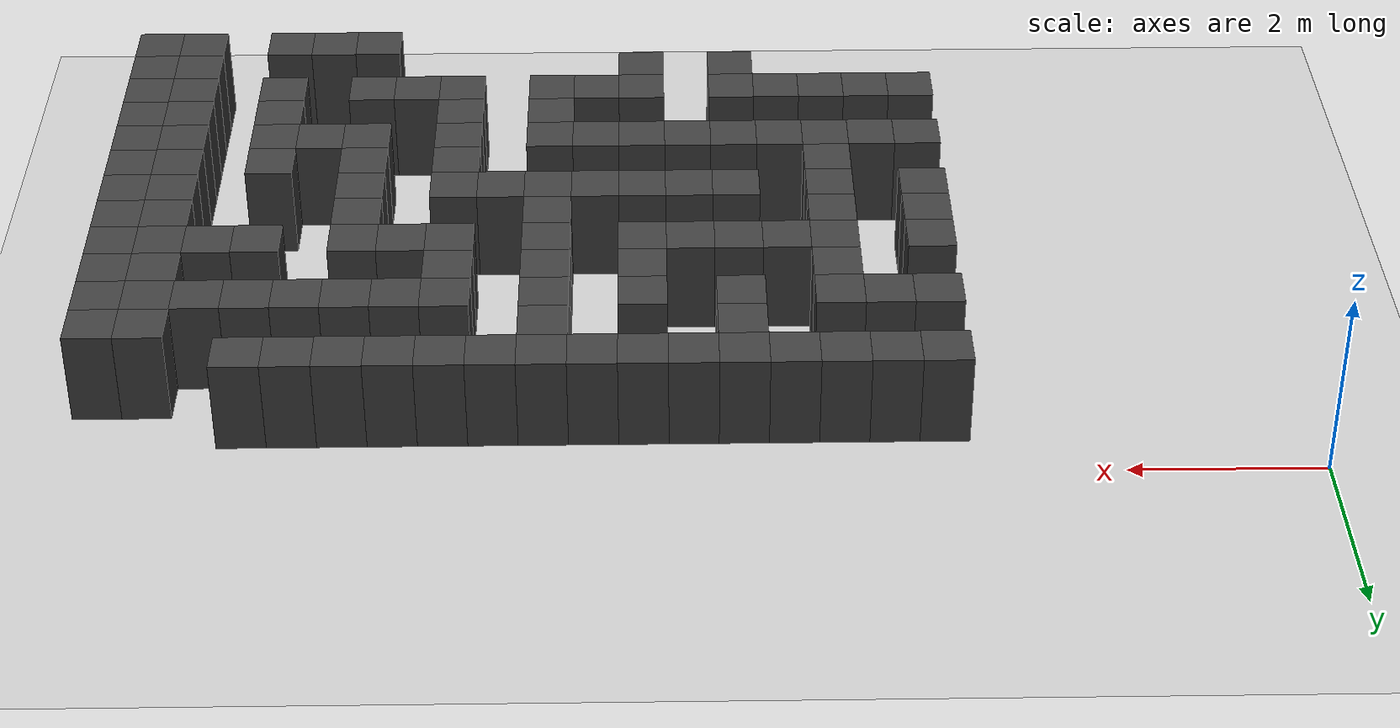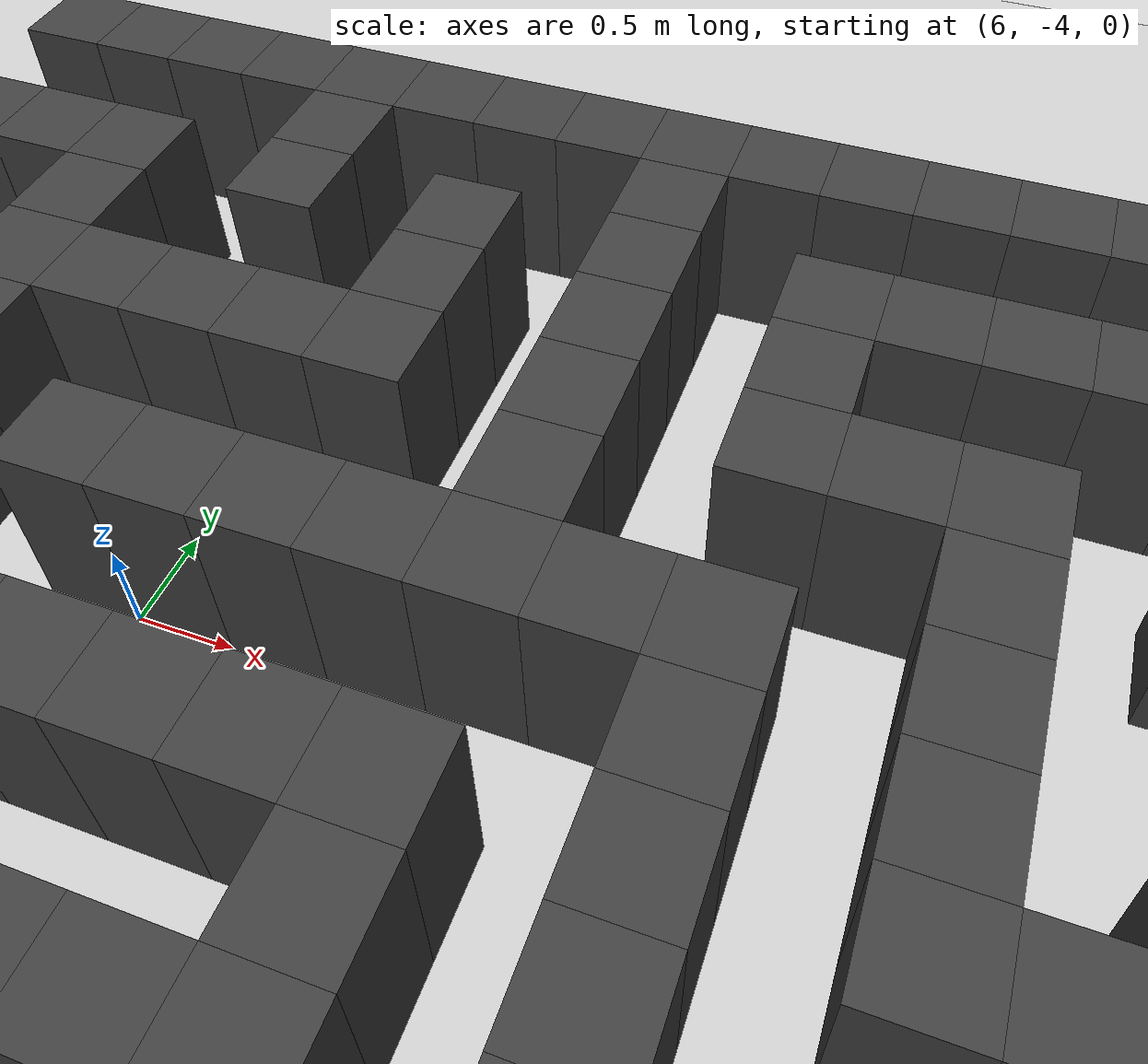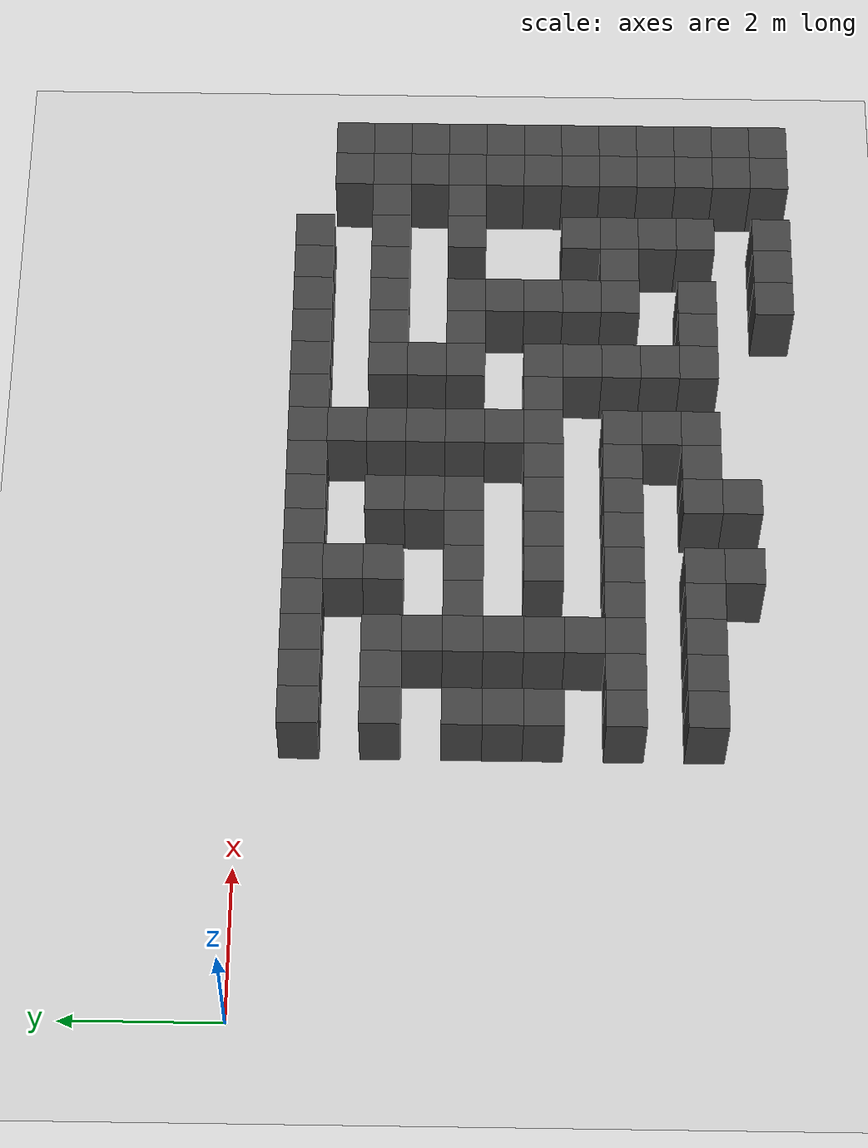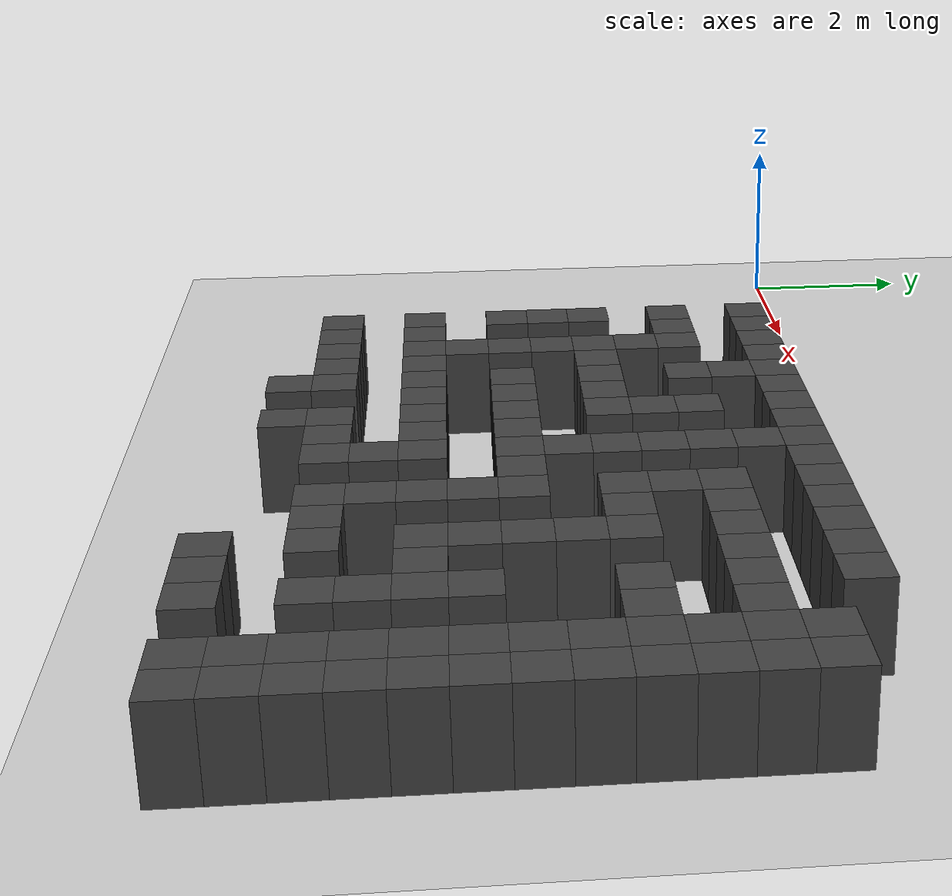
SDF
<sdf version="1.7">
 <world name="map_19217">
  <model name="ground_plane">
   <static>true</static>
   <link name="link">
    <collision name="collision">
     <geometry><plane><normal>0 0 1</normal><size>200 200</size></plane></geometry>
    </collision>
    <visual name="visual">
     <geometry><plane><normal>0 0 1</normal><size>200 200</size></plane></geometry>
     <material><ambient>0.8 0.8 0.8 1</ambient><diffuse>0.8 0.8 0.8 1</diffuse></material>
    </visual>
   </link>
  </model>
  <model name="maze_environment">
   <static>true</static>
   <link name="wall_691">
    <pose>3.750 -0.750 0.500 0 0 0</pose>
    <collision name="col"><geometry><box><size>0.5 0.5 1.0</size></box></geometry></collision>
    <visual name="vis">
     <geometry><box><size>0.5 0.5 1.0</size></box></geometry>
     <material><ambient>0.15 0.15 0.15 1</ambient><diffuse>0.25 0.25 0.25 1</diffuse></material>
    </visual>
   </link>
   <link name="wall_692">
    <pose>4.250 -0.750 0.500 0 0 0</pose>
    <collision name="col"><geometry><box><size>0.5 0.5 1.0</size></box></geometry></collision>
    <visual name="vis">
     <geometry><box><size>0.5 0.5 1.0</size></box></geometry>
     <material><ambient>0.15 0.15 0.15 1</ambient><diffuse>0.25 0.25 0.25 1</diffuse></material>
    </visual>
   </link>
   <link name="wall_693">
    <pose>4.750 -0.750 0.500 0 0 0</pose>
    <collision name="col"><geometry><box><size>0.5 0.5 1.0</size></box></geometry></collision>
    <visual name="vis">
     <geometry><box><size>0.5 0.5 1.0</size></box></geometry>
     <material><ambient>0.15 0.15 0.15 1</ambient><diffuse>0.25 0.25 0.25 1</diffuse></material>
    </visual>
   </link>
   <link name="wall_694">
    <pose>5.250 -0.750 0.500 0 0 0</pose>
    <collision name="col"><geometry><box><size>0.5 0.5 1.0</size></box></geometry></collision>
    <visual name="vis">
     <geometry><box><size>0.5 0.5 1.0</size></box></geometry>
     <material><ambient>0.15 0.15 0.15 1</ambient><diffuse>0.25 0.25 0.25 1</diffuse></material>
    </visual>
   </link>
   <link name="wall_695">
    <pose>5.750 -0.750 0.500 0 0 0</pose>
    <collision name="col"><geometry><box><size>0.5 0.5 1.0</size></box></geometry></collision>
    <visual name="vis">
     <geometry><box><size>0.5 0.5 1.0</size></box></geometry>
     <material><ambient>0.15 0.15 0.15 1</ambient><diffuse>0.25 0.25 0.25 1</diffuse></material>
    </visual>
   </link>
   <link name="wall_696">
    <pose>6.250 -0.750 0.500 0 0 0</pose>
    <collision name="col"><geometry><box><size>0.5 0.5 1.0</size></box></geometry></collision>
    <visual name="vis">
     <geometry><box><size>0.5 0.5 1.0</size></box></geometry>
     <material><ambient>0.15 0.15 0.15 1</ambient><diffuse>0.25 0.25 0.25 1</diffuse></material>
    </visual>
   </link>
   <link name="wall_697">
    <pose>6.750 -0.750 0.500 0 0 0</pose>
    <collision name="col"><geometry><box><size>0.5 0.5 1.0</size></box></geometry></collision>
    <visual name="vis">
     <geometry><box><size>0.5 0.5 1.0</size></box></geometry>
     <material><ambient>0.15 0.15 0.15 1</ambient><diffuse>0.25 0.25 0.25 1</diffuse></material>
    </visual>
   </link>
   <link name="wall_698">
    <pose>7.250 -0.750 0.500 0 0 0</pose>
    <collision name="col"><geometry><box><size>0.5 0.5 1.0</size></box></geometry></collision>
    <visual name="vis">
     <geometry><box><size>0.5 0.5 1.0</size></box></geometry>
     <material><ambient>0.15 0.15 0.15 1</ambient><diffuse>0.25 0.25 0.25 1</diffuse></material>
    </visual>
   </link>
   <link name="wall_699">
    <pose>7.750 -0.750 0.500 0 0 0</pose>
    <collision name="col"><geometry><box><size>0.5 0.5 1.0</size></box></geometry></collision>
    <visual name="vis">
     <geometry><box><size>0.5 0.5 1.0</size></box></geometry>
     <material><ambient>0.15 0.15 0.15 1</ambient><diffuse>0.25 0.25 0.25 1</diffuse></material>
    </visual>
   </link>
   <link name="wall_700">
    <pose>8.250 -0.750 0.500 0 0 0</pose>
    <collision name="col"><geometry><box><size>0.5 0.5 1.0</size></box></geometry></collision>
    <visual name="vis">
     <geometry><box><size>0.5 0.5 1.0</size></box></geometry>
     <material><ambient>0.15 0.15 0.15 1</ambient><diffuse>0.25 0.25 0.25 1</diffuse></material>
    </visual>
   </link>
   <link name="wall_701">
    <pose>8.750 -0.750 0.500 0 0 0</pose>
    <collision name="col"><geometry><box><size>0.5 0.5 1.0</size></box></geometry></collision>
    <visual name="vis">
     <geometry><box><size>0.5 0.5 1.0</size></box></geometry>
     <material><ambient>0.15 0.15 0.15 1</ambient><diffuse>0.25 0.25 0.25 1</diffuse></material>
    </visual>
   </link>
   <link name="wall_702">
    <pose>9.250 -0.750 0.500 0 0 0</pose>
    <collision name="col"><geometry><box><size>0.5 0.5 1.0</size></box></geometry></collision>
    <visual name="vis">
     <geometry><box><size>0.5 0.5 1.0</size></box></geometry>
     <material><ambient>0.15 0.15 0.15 1</ambient><diffuse>0.25 0.25 0.25 1</diffuse></material>
    </visual>
   </link>
   <link name="wall_703">
    <pose>9.750 -0.750 0.500 0 0 0</pose>
    <collision name="col"><geometry><box><size>0.5 0.5 1.0</size></box></geometry></collision>
    <visual name="vis">
     <geometry><box><size>0.5 0.5 1.0</size></box></geometry>
     <material><ambient>0.15 0.15 0.15 1</ambient><diffuse>0.25 0.25 0.25 1</diffuse></material>
    </visual>
   </link>
   <link name="wall_704">
    <pose>10.250 -0.750 0.500 0 0 0</pose>
    <collision name="col"><geometry><box><size>0.5 0.5 1.0</size></box></geometry></collision>
    <visual name="vis">
     <geometry><box><size>0.5 0.5 1.0</size></box></geometry>
     <material><ambient>0.15 0.15 0.15 1</ambient><diffuse>0.25 0.25 0.25 1</diffuse></material>
    </visual>
   </link>
   <link name="wall_705">
    <pose>10.750 -0.750 0.500 0 0 0</pose>
    <collision name="col"><geometry><box><size>0.5 0.5 1.0</size></box></geometry></collision>
    <visual name="vis">
     <geometry><box><size>0.5 0.5 1.0</size></box></geometry>
     <material><ambient>0.15 0.15 0.15 1</ambient><diffuse>0.25 0.25 0.25 1</diffuse></material>
    </visual>
   </link>
   <link name="wall_714">
    <pose>5.750 -1.250 0.500 0 0 0</pose>
    <collision name="col"><geometry><box><size>0.5 0.5 1.0</size></box></geometry></collision>
    <visual name="vis">
     <geometry><box><size>0.5 0.5 1.0</size></box></geometry>
     <material><ambient>0.15 0.15 0.15 1</ambient><diffuse>0.25 0.25 0.25 1</diffuse></material>
    </visual>
   </link>
   <link name="wall_715">
    <pose>7.750 -1.250 0.500 0 0 0</pose>
    <collision name="col"><geometry><box><size>0.5 0.5 1.0</size></box></geometry></collision>
    <visual name="vis">
     <geometry><box><size>0.5 0.5 1.0</size></box></geometry>
     <material><ambient>0.15 0.15 0.15 1</ambient><diffuse>0.25 0.25 0.25 1</diffuse></material>
    </visual>
   </link>
   <link name="wall_716">
    <pose>11.750 -1.250 0.500 0 0 0</pose>
    <collision name="col"><geometry><box><size>0.5 0.5 1.0</size></box></geometry></collision>
    <visual name="vis">
     <geometry><box><size>0.5 0.5 1.0</size></box></geometry>
     <material><ambient>0.15 0.15 0.15 1</ambient><diffuse>0.25 0.25 0.25 1</diffuse></material>
    </visual>
   </link>
   <link name="wall_717">
    <pose>12.250 -1.250 0.500 0 0 0</pose>
    <collision name="col"><geometry><box><size>0.5 0.5 1.0</size></box></geometry></collision>
    <visual name="vis">
     <geometry><box><size>0.5 0.5 1.0</size></box></geometry>
     <material><ambient>0.15 0.15 0.15 1</ambient><diffuse>0.25 0.25 0.25 1</diffuse></material>
    </visual>
   </link>
   <link name="wall_744">
    <pose>3.750 -1.750 0.500 0 0 0</pose>
    <collision name="col"><geometry><box><size>0.5 0.5 1.0</size></box></geometry></collision>
    <visual name="vis">
     <geometry><box><size>0.5 0.5 1.0</size></box></geometry>
     <material><ambient>0.15 0.15 0.15 1</ambient><diffuse>0.25 0.25 0.25 1</diffuse></material>
    </visual>
   </link>
   <link name="wall_745">
    <pose>4.250 -1.750 0.500 0 0 0</pose>
    <collision name="col"><geometry><box><size>0.5 0.5 1.0</size></box></geometry></collision>
    <visual name="vis">
     <geometry><box><size>0.5 0.5 1.0</size></box></geometry>
     <material><ambient>0.15 0.15 0.15 1</ambient><diffuse>0.25 0.25 0.25 1</diffuse></material>
    </visual>
   </link>
   <link name="wall_746">
    <pose>4.750 -1.750 0.500 0 0 0</pose>
    <collision name="col"><geometry><box><size>0.5 0.5 1.0</size></box></geometry></collision>
    <visual name="vis">
     <geometry><box><size>0.5 0.5 1.0</size></box></geometry>
     <material><ambient>0.15 0.15 0.15 1</ambient><diffuse>0.25 0.25 0.25 1</diffuse></material>
    </visual>
   </link>
   <link name="wall_747">
    <pose>5.750 -1.750 0.500 0 0 0</pose>
    <collision name="col"><geometry><box><size>0.5 0.5 1.0</size></box></geometry></collision>
    <visual name="vis">
     <geometry><box><size>0.5 0.5 1.0</size></box></geometry>
     <material><ambient>0.15 0.15 0.15 1</ambient><diffuse>0.25 0.25 0.25 1</diffuse></material>
    </visual>
   </link>
   <link name="wall_748">
    <pose>6.750 -1.750 0.500 0 0 0</pose>
    <collision name="col"><geometry><box><size>0.5 0.5 1.0</size></box></geometry></collision>
    <visual name="vis">
     <geometry><box><size>0.5 0.5 1.0</size></box></geometry>
     <material><ambient>0.15 0.15 0.15 1</ambient><diffuse>0.25 0.25 0.25 1</diffuse></material>
    </visual>
   </link>
   <link name="wall_749">
    <pose>7.750 -1.750 0.500 0 0 0</pose>
    <collision name="col"><geometry><box><size>0.5 0.5 1.0</size></box></geometry></collision>
    <visual name="vis">
     <geometry><box><size>0.5 0.5 1.0</size></box></geometry>
     <material><ambient>0.15 0.15 0.15 1</ambient><diffuse>0.25 0.25 0.25 1</diffuse></material>
    </visual>
   </link>
   <link name="wall_750">
    <pose>8.750 -1.750 0.500 0 0 0</pose>
    <collision name="col"><geometry><box><size>0.5 0.5 1.0</size></box></geometry></collision>
    <visual name="vis">
     <geometry><box><size>0.5 0.5 1.0</size></box></geometry>
     <material><ambient>0.15 0.15 0.15 1</ambient><diffuse>0.25 0.25 0.25 1</diffuse></material>
    </visual>
   </link>
   <link name="wall_751">
    <pose>9.250 -1.750 0.500 0 0 0</pose>
    <collision name="col"><geometry><box><size>0.5 0.5 1.0</size></box></geometry></collision>
    <visual name="vis">
     <geometry><box><size>0.5 0.5 1.0</size></box></geometry>
     <material><ambient>0.15 0.15 0.15 1</ambient><diffuse>0.25 0.25 0.25 1</diffuse></material>
    </visual>
   </link>
   <link name="wall_752">
    <pose>9.750 -1.750 0.500 0 0 0</pose>
    <collision name="col"><geometry><box><size>0.5 0.5 1.0</size></box></geometry></collision>
    <visual name="vis">
     <geometry><box><size>0.5 0.5 1.0</size></box></geometry>
     <material><ambient>0.15 0.15 0.15 1</ambient><diffuse>0.25 0.25 0.25 1</diffuse></material>
    </visual>
   </link>
   <link name="wall_753">
    <pose>10.250 -1.750 0.500 0 0 0</pose>
    <collision name="col"><geometry><box><size>0.5 0.5 1.0</size></box></geometry></collision>
    <visual name="vis">
     <geometry><box><size>0.5 0.5 1.0</size></box></geometry>
     <material><ambient>0.15 0.15 0.15 1</ambient><diffuse>0.25 0.25 0.25 1</diffuse></material>
    </visual>
   </link>
   <link name="wall_754">
    <pose>10.750 -1.750 0.500 0 0 0</pose>
    <collision name="col"><geometry><box><size>0.5 0.5 1.0</size></box></geometry></collision>
    <visual name="vis">
     <geometry><box><size>0.5 0.5 1.0</size></box></geometry>
     <material><ambient>0.15 0.15 0.15 1</ambient><diffuse>0.25 0.25 0.25 1</diffuse></material>
    </visual>
   </link>
   <link name="wall_755">
    <pose>11.250 -1.750 0.500 0 0 0</pose>
    <collision name="col"><geometry><box><size>0.5 0.5 1.0</size></box></geometry></collision>
    <visual name="vis">
     <geometry><box><size>0.5 0.5 1.0</size></box></geometry>
     <material><ambient>0.15 0.15 0.15 1</ambient><diffuse>0.25 0.25 0.25 1</diffuse></material>
    </visual>
   </link>
   <link name="wall_756">
    <pose>11.750 -1.750 0.500 0 0 0</pose>
    <collision name="col"><geometry><box><size>0.5 0.5 1.0</size></box></geometry></collision>
    <visual name="vis">
     <geometry><box><size>0.5 0.5 1.0</size></box></geometry>
     <material><ambient>0.15 0.15 0.15 1</ambient><diffuse>0.25 0.25 0.25 1</diffuse></material>
    </visual>
   </link>
   <link name="wall_757">
    <pose>12.250 -1.750 0.500 0 0 0</pose>
    <collision name="col"><geometry><box><size>0.5 0.5 1.0</size></box></geometry></collision>
    <visual name="vis">
     <geometry><box><size>0.5 0.5 1.0</size></box></geometry>
     <material><ambient>0.15 0.15 0.15 1</ambient><diffuse>0.25 0.25 0.25 1</diffuse></material>
    </visual>
   </link>
   <link name="wall_763">
    <pose>4.750 -2.250 0.500 0 0 0</pose>
    <collision name="col"><geometry><box><size>0.5 0.5 1.0</size></box></geometry></collision>
    <visual name="vis">
     <geometry><box><size>0.5 0.5 1.0</size></box></geometry>
     <material><ambient>0.15 0.15 0.15 1</ambient><diffuse>0.25 0.25 0.25 1</diffuse></material>
    </visual>
   </link>
   <link name="wall_764">
    <pose>6.750 -2.250 0.500 0 0 0</pose>
    <collision name="col"><geometry><box><size>0.5 0.5 1.0</size></box></geometry></collision>
    <visual name="vis">
     <geometry><box><size>0.5 0.5 1.0</size></box></geometry>
     <material><ambient>0.15 0.15 0.15 1</ambient><diffuse>0.25 0.25 0.25 1</diffuse></material>
    </visual>
   </link>
   <link name="wall_765">
    <pose>7.750 -2.250 0.500 0 0 0</pose>
    <collision name="col"><geometry><box><size>0.5 0.5 1.0</size></box></geometry></collision>
    <visual name="vis">
     <geometry><box><size>0.5 0.5 1.0</size></box></geometry>
     <material><ambient>0.15 0.15 0.15 1</ambient><diffuse>0.25 0.25 0.25 1</diffuse></material>
    </visual>
   </link>
   <link name="wall_766">
    <pose>8.750 -2.250 0.500 0 0 0</pose>
    <collision name="col"><geometry><box><size>0.5 0.5 1.0</size></box></geometry></collision>
    <visual name="vis">
     <geometry><box><size>0.5 0.5 1.0</size></box></geometry>
     <material><ambient>0.15 0.15 0.15 1</ambient><diffuse>0.25 0.25 0.25 1</diffuse></material>
    </visual>
   </link>
   <link name="wall_767">
    <pose>11.750 -2.250 0.500 0 0 0</pose>
    <collision name="col"><geometry><box><size>0.5 0.5 1.0</size></box></geometry></collision>
    <visual name="vis">
     <geometry><box><size>0.5 0.5 1.0</size></box></geometry>
     <material><ambient>0.15 0.15 0.15 1</ambient><diffuse>0.25 0.25 0.25 1</diffuse></material>
    </visual>
   </link>
   <link name="wall_768">
    <pose>12.250 -2.250 0.500 0 0 0</pose>
    <collision name="col"><geometry><box><size>0.5 0.5 1.0</size></box></geometry></collision>
    <visual name="vis">
     <geometry><box><size>0.5 0.5 1.0</size></box></geometry>
     <material><ambient>0.15 0.15 0.15 1</ambient><diffuse>0.25 0.25 0.25 1</diffuse></material>
    </visual>
   </link>
   <link name="wall_794">
    <pose>3.750 -2.750 0.500 0 0 0</pose>
    <collision name="col"><geometry><box><size>0.5 0.5 1.0</size></box></geometry></collision>
    <visual name="vis">
     <geometry><box><size>0.5 0.5 1.0</size></box></geometry>
     <material><ambient>0.15 0.15 0.15 1</ambient><diffuse>0.25 0.25 0.25 1</diffuse></material>
    </visual>
   </link>
   <link name="wall_795">
    <pose>4.750 -2.750 0.500 0 0 0</pose>
    <collision name="col"><geometry><box><size>0.5 0.5 1.0</size></box></geometry></collision>
    <visual name="vis">
     <geometry><box><size>0.5 0.5 1.0</size></box></geometry>
     <material><ambient>0.15 0.15 0.15 1</ambient><diffuse>0.25 0.25 0.25 1</diffuse></material>
    </visual>
   </link>
   <link name="wall_796">
    <pose>5.250 -2.750 0.500 0 0 0</pose>
    <collision name="col"><geometry><box><size>0.5 0.5 1.0</size></box></geometry></collision>
    <visual name="vis">
     <geometry><box><size>0.5 0.5 1.0</size></box></geometry>
     <material><ambient>0.15 0.15 0.15 1</ambient><diffuse>0.25 0.25 0.25 1</diffuse></material>
    </visual>
   </link>
   <link name="wall_797">
    <pose>5.750 -2.750 0.500 0 0 0</pose>
    <collision name="col"><geometry><box><size>0.5 0.5 1.0</size></box></geometry></collision>
    <visual name="vis">
     <geometry><box><size>0.5 0.5 1.0</size></box></geometry>
     <material><ambient>0.15 0.15 0.15 1</ambient><diffuse>0.25 0.25 0.25 1</diffuse></material>
    </visual>
   </link>
   <link name="wall_798">
    <pose>6.250 -2.750 0.500 0 0 0</pose>
    <collision name="col"><geometry><box><size>0.5 0.5 1.0</size></box></geometry></collision>
    <visual name="vis">
     <geometry><box><size>0.5 0.5 1.0</size></box></geometry>
     <material><ambient>0.15 0.15 0.15 1</ambient><diffuse>0.25 0.25 0.25 1</diffuse></material>
    </visual>
   </link>
   <link name="wall_799">
    <pose>6.750 -2.750 0.500 0 0 0</pose>
    <collision name="col"><geometry><box><size>0.5 0.5 1.0</size></box></geometry></collision>
    <visual name="vis">
     <geometry><box><size>0.5 0.5 1.0</size></box></geometry>
     <material><ambient>0.15 0.15 0.15 1</ambient><diffuse>0.25 0.25 0.25 1</diffuse></material>
    </visual>
   </link>
   <link name="wall_800">
    <pose>7.750 -2.750 0.500 0 0 0</pose>
    <collision name="col"><geometry><box><size>0.5 0.5 1.0</size></box></geometry></collision>
    <visual name="vis">
     <geometry><box><size>0.5 0.5 1.0</size></box></geometry>
     <material><ambient>0.15 0.15 0.15 1</ambient><diffuse>0.25 0.25 0.25 1</diffuse></material>
    </visual>
   </link>
   <link name="wall_801">
    <pose>8.750 -2.750 0.500 0 0 0</pose>
    <collision name="col"><geometry><box><size>0.5 0.5 1.0</size></box></geometry></collision>
    <visual name="vis">
     <geometry><box><size>0.5 0.5 1.0</size></box></geometry>
     <material><ambient>0.15 0.15 0.15 1</ambient><diffuse>0.25 0.25 0.25 1</diffuse></material>
    </visual>
   </link>
   <link name="wall_802">
    <pose>9.250 -2.750 0.500 0 0 0</pose>
    <collision name="col"><geometry><box><size>0.5 0.5 1.0</size></box></geometry></collision>
    <visual name="vis">
     <geometry><box><size>0.5 0.5 1.0</size></box></geometry>
     <material><ambient>0.15 0.15 0.15 1</ambient><diffuse>0.25 0.25 0.25 1</diffuse></material>
    </visual>
   </link>
   <link name="wall_803">
    <pose>9.750 -2.750 0.500 0 0 0</pose>
    <collision name="col"><geometry><box><size>0.5 0.5 1.0</size></box></geometry></collision>
    <visual name="vis">
     <geometry><box><size>0.5 0.5 1.0</size></box></geometry>
     <material><ambient>0.15 0.15 0.15 1</ambient><diffuse>0.25 0.25 0.25 1</diffuse></material>
    </visual>
   </link>
   <link name="wall_804">
    <pose>10.750 -2.750 0.500 0 0 0</pose>
    <collision name="col"><geometry><box><size>0.5 0.5 1.0</size></box></geometry></collision>
    <visual name="vis">
     <geometry><box><size>0.5 0.5 1.0</size></box></geometry>
     <material><ambient>0.15 0.15 0.15 1</ambient><diffuse>0.25 0.25 0.25 1</diffuse></material>
    </visual>
   </link>
   <link name="wall_805">
    <pose>11.250 -2.750 0.500 0 0 0</pose>
    <collision name="col"><geometry><box><size>0.5 0.5 1.0</size></box></geometry></collision>
    <visual name="vis">
     <geometry><box><size>0.5 0.5 1.0</size></box></geometry>
     <material><ambient>0.15 0.15 0.15 1</ambient><diffuse>0.25 0.25 0.25 1</diffuse></material>
    </visual>
   </link>
   <link name="wall_806">
    <pose>11.750 -2.750 0.500 0 0 0</pose>
    <collision name="col"><geometry><box><size>0.5 0.5 1.0</size></box></geometry></collision>
    <visual name="vis">
     <geometry><box><size>0.5 0.5 1.0</size></box></geometry>
     <material><ambient>0.15 0.15 0.15 1</ambient><diffuse>0.25 0.25 0.25 1</diffuse></material>
    </visual>
   </link>
   <link name="wall_807">
    <pose>12.250 -2.750 0.500 0 0 0</pose>
    <collision name="col"><geometry><box><size>0.5 0.5 1.0</size></box></geometry></collision>
    <visual name="vis">
     <geometry><box><size>0.5 0.5 1.0</size></box></geometry>
     <material><ambient>0.15 0.15 0.15 1</ambient><diffuse>0.25 0.25 0.25 1</diffuse></material>
    </visual>
   </link>
   <link name="wall_813">
    <pose>3.750 -3.250 0.500 0 0 0</pose>
    <collision name="col"><geometry><box><size>0.5 0.5 1.0</size></box></geometry></collision>
    <visual name="vis">
     <geometry><box><size>0.5 0.5 1.0</size></box></geometry>
     <material><ambient>0.15 0.15 0.15 1</ambient><diffuse>0.25 0.25 0.25 1</diffuse></material>
    </visual>
   </link>
   <link name="wall_814">
    <pose>4.750 -3.250 0.500 0 0 0</pose>
    <collision name="col"><geometry><box><size>0.5 0.5 1.0</size></box></geometry></collision>
    <visual name="vis">
     <geometry><box><size>0.5 0.5 1.0</size></box></geometry>
     <material><ambient>0.15 0.15 0.15 1</ambient><diffuse>0.25 0.25 0.25 1</diffuse></material>
    </visual>
   </link>
   <link name="wall_815">
    <pose>7.750 -3.250 0.500 0 0 0</pose>
    <collision name="col"><geometry><box><size>0.5 0.5 1.0</size></box></geometry></collision>
    <visual name="vis">
     <geometry><box><size>0.5 0.5 1.0</size></box></geometry>
     <material><ambient>0.15 0.15 0.15 1</ambient><diffuse>0.25 0.25 0.25 1</diffuse></material>
    </visual>
   </link>
   <link name="wall_816">
    <pose>9.750 -3.250 0.500 0 0 0</pose>
    <collision name="col"><geometry><box><size>0.5 0.5 1.0</size></box></geometry></collision>
    <visual name="vis">
     <geometry><box><size>0.5 0.5 1.0</size></box></geometry>
     <material><ambient>0.15 0.15 0.15 1</ambient><diffuse>0.25 0.25 0.25 1</diffuse></material>
    </visual>
   </link>
   <link name="wall_817">
    <pose>11.750 -3.250 0.500 0 0 0</pose>
    <collision name="col"><geometry><box><size>0.5 0.5 1.0</size></box></geometry></collision>
    <visual name="vis">
     <geometry><box><size>0.5 0.5 1.0</size></box></geometry>
     <material><ambient>0.15 0.15 0.15 1</ambient><diffuse>0.25 0.25 0.25 1</diffuse></material>
    </visual>
   </link>
   <link name="wall_818">
    <pose>12.250 -3.250 0.500 0 0 0</pose>
    <collision name="col"><geometry><box><size>0.5 0.5 1.0</size></box></geometry></collision>
    <visual name="vis">
     <geometry><box><size>0.5 0.5 1.0</size></box></geometry>
     <material><ambient>0.15 0.15 0.15 1</ambient><diffuse>0.25 0.25 0.25 1</diffuse></material>
    </visual>
   </link>
   <link name="wall_847">
    <pose>3.750 -3.750 0.500 0 0 0</pose>
    <collision name="col"><geometry><box><size>0.5 0.5 1.0</size></box></geometry></collision>
    <visual name="vis">
     <geometry><box><size>0.5 0.5 1.0</size></box></geometry>
     <material><ambient>0.15 0.15 0.15 1</ambient><diffuse>0.25 0.25 0.25 1</diffuse></material>
    </visual>
   </link>
   <link name="wall_848">
    <pose>4.750 -3.750 0.500 0 0 0</pose>
    <collision name="col"><geometry><box><size>0.5 0.5 1.0</size></box></geometry></collision>
    <visual name="vis">
     <geometry><box><size>0.5 0.5 1.0</size></box></geometry>
     <material><ambient>0.15 0.15 0.15 1</ambient><diffuse>0.25 0.25 0.25 1</diffuse></material>
    </visual>
   </link>
   <link name="wall_849">
    <pose>5.750 -3.750 0.500 0 0 0</pose>
    <collision name="col"><geometry><box><size>0.5 0.5 1.0</size></box></geometry></collision>
    <visual name="vis">
     <geometry><box><size>0.5 0.5 1.0</size></box></geometry>
     <material><ambient>0.15 0.15 0.15 1</ambient><diffuse>0.25 0.25 0.25 1</diffuse></material>
    </visual>
   </link>
   <link name="wall_850">
    <pose>6.250 -3.750 0.500 0 0 0</pose>
    <collision name="col"><geometry><box><size>0.5 0.5 1.0</size></box></geometry></collision>
    <visual name="vis">
     <geometry><box><size>0.5 0.5 1.0</size></box></geometry>
     <material><ambient>0.15 0.15 0.15 1</ambient><diffuse>0.25 0.25 0.25 1</diffuse></material>
    </visual>
   </link>
   <link name="wall_851">
    <pose>6.750 -3.750 0.500 0 0 0</pose>
    <collision name="col"><geometry><box><size>0.5 0.5 1.0</size></box></geometry></collision>
    <visual name="vis">
     <geometry><box><size>0.5 0.5 1.0</size></box></geometry>
     <material><ambient>0.15 0.15 0.15 1</ambient><diffuse>0.25 0.25 0.25 1</diffuse></material>
    </visual>
   </link>
   <link name="wall_852">
    <pose>7.250 -3.750 0.500 0 0 0</pose>
    <collision name="col"><geometry><box><size>0.5 0.5 1.0</size></box></geometry></collision>
    <visual name="vis">
     <geometry><box><size>0.5 0.5 1.0</size></box></geometry>
     <material><ambient>0.15 0.15 0.15 1</ambient><diffuse>0.25 0.25 0.25 1</diffuse></material>
    </visual>
   </link>
   <link name="wall_853">
    <pose>7.750 -3.750 0.500 0 0 0</pose>
    <collision name="col"><geometry><box><size>0.5 0.5 1.0</size></box></geometry></collision>
    <visual name="vis">
     <geometry><box><size>0.5 0.5 1.0</size></box></geometry>
     <material><ambient>0.15 0.15 0.15 1</ambient><diffuse>0.25 0.25 0.25 1</diffuse></material>
    </visual>
   </link>
   <link name="wall_854">
    <pose>8.250 -3.750 0.500 0 0 0</pose>
    <collision name="col"><geometry><box><size>0.5 0.5 1.0</size></box></geometry></collision>
    <visual name="vis">
     <geometry><box><size>0.5 0.5 1.0</size></box></geometry>
     <material><ambient>0.15 0.15 0.15 1</ambient><diffuse>0.25 0.25 0.25 1</diffuse></material>
    </visual>
   </link>
   <link name="wall_855">
    <pose>8.750 -3.750 0.500 0 0 0</pose>
    <collision name="col"><geometry><box><size>0.5 0.5 1.0</size></box></geometry></collision>
    <visual name="vis">
     <geometry><box><size>0.5 0.5 1.0</size></box></geometry>
     <material><ambient>0.15 0.15 0.15 1</ambient><diffuse>0.25 0.25 0.25 1</diffuse></material>
    </visual>
   </link>
   <link name="wall_856">
    <pose>9.750 -3.750 0.500 0 0 0</pose>
    <collision name="col"><geometry><box><size>0.5 0.5 1.0</size></box></geometry></collision>
    <visual name="vis">
     <geometry><box><size>0.5 0.5 1.0</size></box></geometry>
     <material><ambient>0.15 0.15 0.15 1</ambient><diffuse>0.25 0.25 0.25 1</diffuse></material>
    </visual>
   </link>
   <link name="wall_857">
    <pose>11.750 -3.750 0.500 0 0 0</pose>
    <collision name="col"><geometry><box><size>0.5 0.5 1.0</size></box></geometry></collision>
    <visual name="vis">
     <geometry><box><size>0.5 0.5 1.0</size></box></geometry>
     <material><ambient>0.15 0.15 0.15 1</ambient><diffuse>0.25 0.25 0.25 1</diffuse></material>
    </visual>
   </link>
   <link name="wall_858">
    <pose>12.250 -3.750 0.500 0 0 0</pose>
    <collision name="col"><geometry><box><size>0.5 0.5 1.0</size></box></geometry></collision>
    <visual name="vis">
     <geometry><box><size>0.5 0.5 1.0</size></box></geometry>
     <material><ambient>0.15 0.15 0.15 1</ambient><diffuse>0.25 0.25 0.25 1</diffuse></material>
    </visual>
   </link>
   <link name="wall_864">
    <pose>4.750 -4.250 0.500 0 0 0</pose>
    <collision name="col"><geometry><box><size>0.5 0.5 1.0</size></box></geometry></collision>
    <visual name="vis">
     <geometry><box><size>0.5 0.5 1.0</size></box></geometry>
     <material><ambient>0.15 0.15 0.15 1</ambient><diffuse>0.25 0.25 0.25 1</diffuse></material>
    </visual>
   </link>
   <link name="wall_865">
    <pose>8.750 -4.250 0.500 0 0 0</pose>
    <collision name="col"><geometry><box><size>0.5 0.5 1.0</size></box></geometry></collision>
    <visual name="vis">
     <geometry><box><size>0.5 0.5 1.0</size></box></geometry>
     <material><ambient>0.15 0.15 0.15 1</ambient><diffuse>0.25 0.25 0.25 1</diffuse></material>
    </visual>
   </link>
   <link name="wall_866">
    <pose>9.750 -4.250 0.500 0 0 0</pose>
    <collision name="col"><geometry><box><size>0.5 0.5 1.0</size></box></geometry></collision>
    <visual name="vis">
     <geometry><box><size>0.5 0.5 1.0</size></box></geometry>
     <material><ambient>0.15 0.15 0.15 1</ambient><diffuse>0.25 0.25 0.25 1</diffuse></material>
    </visual>
   </link>
   <link name="wall_867">
    <pose>10.750 -4.250 0.500 0 0 0</pose>
    <collision name="col"><geometry><box><size>0.5 0.5 1.0</size></box></geometry></collision>
    <visual name="vis">
     <geometry><box><size>0.5 0.5 1.0</size></box></geometry>
     <material><ambient>0.15 0.15 0.15 1</ambient><diffuse>0.25 0.25 0.25 1</diffuse></material>
    </visual>
   </link>
   <link name="wall_868">
    <pose>11.750 -4.250 0.500 0 0 0</pose>
    <collision name="col"><geometry><box><size>0.5 0.5 1.0</size></box></geometry></collision>
    <visual name="vis">
     <geometry><box><size>0.5 0.5 1.0</size></box></geometry>
     <material><ambient>0.15 0.15 0.15 1</ambient><diffuse>0.25 0.25 0.25 1</diffuse></material>
    </visual>
   </link>
   <link name="wall_869">
    <pose>12.250 -4.250 0.500 0 0 0</pose>
    <collision name="col"><geometry><box><size>0.5 0.5 1.0</size></box></geometry></collision>
    <visual name="vis">
     <geometry><box><size>0.5 0.5 1.0</size></box></geometry>
     <material><ambient>0.15 0.15 0.15 1</ambient><diffuse>0.25 0.25 0.25 1</diffuse></material>
    </visual>
   </link>
   <link name="wall_896">
    <pose>3.750 -4.750 0.500 0 0 0</pose>
    <collision name="col"><geometry><box><size>0.5 0.5 1.0</size></box></geometry></collision>
    <visual name="vis">
     <geometry><box><size>0.5 0.5 1.0</size></box></geometry>
     <material><ambient>0.15 0.15 0.15 1</ambient><diffuse>0.25 0.25 0.25 1</diffuse></material>
    </visual>
   </link>
   <link name="wall_897">
    <pose>4.250 -4.750 0.500 0 0 0</pose>
    <collision name="col"><geometry><box><size>0.5 0.5 1.0</size></box></geometry></collision>
    <visual name="vis">
     <geometry><box><size>0.5 0.5 1.0</size></box></geometry>
     <material><ambient>0.15 0.15 0.15 1</ambient><diffuse>0.25 0.25 0.25 1</diffuse></material>
    </visual>
   </link>
   <link name="wall_898">
    <pose>4.750 -4.750 0.500 0 0 0</pose>
    <collision name="col"><geometry><box><size>0.5 0.5 1.0</size></box></geometry></collision>
    <visual name="vis">
     <geometry><box><size>0.5 0.5 1.0</size></box></geometry>
     <material><ambient>0.15 0.15 0.15 1</ambient><diffuse>0.25 0.25 0.25 1</diffuse></material>
    </visual>
   </link>
   <link name="wall_899">
    <pose>5.250 -4.750 0.500 0 0 0</pose>
    <collision name="col"><geometry><box><size>0.5 0.5 1.0</size></box></geometry></collision>
    <visual name="vis">
     <geometry><box><size>0.5 0.5 1.0</size></box></geometry>
     <material><ambient>0.15 0.15 0.15 1</ambient><diffuse>0.25 0.25 0.25 1</diffuse></material>
    </visual>
   </link>
   <link name="wall_900">
    <pose>5.750 -4.750 0.500 0 0 0</pose>
    <collision name="col"><geometry><box><size>0.5 0.5 1.0</size></box></geometry></collision>
    <visual name="vis">
     <geometry><box><size>0.5 0.5 1.0</size></box></geometry>
     <material><ambient>0.15 0.15 0.15 1</ambient><diffuse>0.25 0.25 0.25 1</diffuse></material>
    </visual>
   </link>
   <link name="wall_901">
    <pose>6.250 -4.750 0.500 0 0 0</pose>
    <collision name="col"><geometry><box><size>0.5 0.5 1.0</size></box></geometry></collision>
    <visual name="vis">
     <geometry><box><size>0.5 0.5 1.0</size></box></geometry>
     <material><ambient>0.15 0.15 0.15 1</ambient><diffuse>0.25 0.25 0.25 1</diffuse></material>
    </visual>
   </link>
   <link name="wall_902">
    <pose>6.750 -4.750 0.500 0 0 0</pose>
    <collision name="col"><geometry><box><size>0.5 0.5 1.0</size></box></geometry></collision>
    <visual name="vis">
     <geometry><box><size>0.5 0.5 1.0</size></box></geometry>
     <material><ambient>0.15 0.15 0.15 1</ambient><diffuse>0.25 0.25 0.25 1</diffuse></material>
    </visual>
   </link>
   <link name="wall_903">
    <pose>7.250 -4.750 0.500 0 0 0</pose>
    <collision name="col"><geometry><box><size>0.5 0.5 1.0</size></box></geometry></collision>
    <visual name="vis">
     <geometry><box><size>0.5 0.5 1.0</size></box></geometry>
     <material><ambient>0.15 0.15 0.15 1</ambient><diffuse>0.25 0.25 0.25 1</diffuse></material>
    </visual>
   </link>
   <link name="wall_904">
    <pose>7.750 -4.750 0.500 0 0 0</pose>
    <collision name="col"><geometry><box><size>0.5 0.5 1.0</size></box></geometry></collision>
    <visual name="vis">
     <geometry><box><size>0.5 0.5 1.0</size></box></geometry>
     <material><ambient>0.15 0.15 0.15 1</ambient><diffuse>0.25 0.25 0.25 1</diffuse></material>
    </visual>
   </link>
   <link name="wall_905">
    <pose>8.750 -4.750 0.500 0 0 0</pose>
    <collision name="col"><geometry><box><size>0.5 0.5 1.0</size></box></geometry></collision>
    <visual name="vis">
     <geometry><box><size>0.5 0.5 1.0</size></box></geometry>
     <material><ambient>0.15 0.15 0.15 1</ambient><diffuse>0.25 0.25 0.25 1</diffuse></material>
    </visual>
   </link>
   <link name="wall_906">
    <pose>9.750 -4.750 0.500 0 0 0</pose>
    <collision name="col"><geometry><box><size>0.5 0.5 1.0</size></box></geometry></collision>
    <visual name="vis">
     <geometry><box><size>0.5 0.5 1.0</size></box></geometry>
     <material><ambient>0.15 0.15 0.15 1</ambient><diffuse>0.25 0.25 0.25 1</diffuse></material>
    </visual>
   </link>
   <link name="wall_907">
    <pose>10.250 -4.750 0.500 0 0 0</pose>
    <collision name="col"><geometry><box><size>0.5 0.5 1.0</size></box></geometry></collision>
    <visual name="vis">
     <geometry><box><size>0.5 0.5 1.0</size></box></geometry>
     <material><ambient>0.15 0.15 0.15 1</ambient><diffuse>0.25 0.25 0.25 1</diffuse></material>
    </visual>
   </link>
   <link name="wall_908">
    <pose>10.750 -4.750 0.500 0 0 0</pose>
    <collision name="col"><geometry><box><size>0.5 0.5 1.0</size></box></geometry></collision>
    <visual name="vis">
     <geometry><box><size>0.5 0.5 1.0</size></box></geometry>
     <material><ambient>0.15 0.15 0.15 1</ambient><diffuse>0.25 0.25 0.25 1</diffuse></material>
    </visual>
   </link>
   <link name="wall_909">
    <pose>11.750 -4.750 0.500 0 0 0</pose>
    <collision name="col"><geometry><box><size>0.5 0.5 1.0</size></box></geometry></collision>
    <visual name="vis">
     <geometry><box><size>0.5 0.5 1.0</size></box></geometry>
     <material><ambient>0.15 0.15 0.15 1</ambient><diffuse>0.25 0.25 0.25 1</diffuse></material>
    </visual>
   </link>
   <link name="wall_910">
    <pose>12.250 -4.750 0.500 0 0 0</pose>
    <collision name="col"><geometry><box><size>0.5 0.5 1.0</size></box></geometry></collision>
    <visual name="vis">
     <geometry><box><size>0.5 0.5 1.0</size></box></geometry>
     <material><ambient>0.15 0.15 0.15 1</ambient><diffuse>0.25 0.25 0.25 1</diffuse></material>
    </visual>
   </link>
   <link name="wall_916">
    <pose>7.750 -5.250 0.500 0 0 0</pose>
    <collision name="col"><geometry><box><size>0.5 0.5 1.0</size></box></geometry></collision>
    <visual name="vis">
     <geometry><box><size>0.5 0.5 1.0</size></box></geometry>
     <material><ambient>0.15 0.15 0.15 1</ambient><diffuse>0.25 0.25 0.25 1</diffuse></material>
    </visual>
   </link>
   <link name="wall_917">
    <pose>8.750 -5.250 0.500 0 0 0</pose>
    <collision name="col"><geometry><box><size>0.5 0.5 1.0</size></box></geometry></collision>
    <visual name="vis">
     <geometry><box><size>0.5 0.5 1.0</size></box></geometry>
     <material><ambient>0.15 0.15 0.15 1</ambient><diffuse>0.25 0.25 0.25 1</diffuse></material>
    </visual>
   </link>
   <link name="wall_918">
    <pose>10.750 -5.250 0.500 0 0 0</pose>
    <collision name="col"><geometry><box><size>0.5 0.5 1.0</size></box></geometry></collision>
    <visual name="vis">
     <geometry><box><size>0.5 0.5 1.0</size></box></geometry>
     <material><ambient>0.15 0.15 0.15 1</ambient><diffuse>0.25 0.25 0.25 1</diffuse></material>
    </visual>
   </link>
   <link name="wall_919">
    <pose>11.750 -5.250 0.500 0 0 0</pose>
    <collision name="col"><geometry><box><size>0.5 0.5 1.0</size></box></geometry></collision>
    <visual name="vis">
     <geometry><box><size>0.5 0.5 1.0</size></box></geometry>
     <material><ambient>0.15 0.15 0.15 1</ambient><diffuse>0.25 0.25 0.25 1</diffuse></material>
    </visual>
   </link>
   <link name="wall_920">
    <pose>12.250 -5.250 0.500 0 0 0</pose>
    <collision name="col"><geometry><box><size>0.5 0.5 1.0</size></box></geometry></collision>
    <visual name="vis">
     <geometry><box><size>0.5 0.5 1.0</size></box></geometry>
     <material><ambient>0.15 0.15 0.15 1</ambient><diffuse>0.25 0.25 0.25 1</diffuse></material>
    </visual>
   </link>
   <link name="wall_947">
    <pose>3.750 -5.750 0.500 0 0 0</pose>
    <collision name="col"><geometry><box><size>0.5 0.5 1.0</size></box></geometry></collision>
    <visual name="vis">
     <geometry><box><size>0.5 0.5 1.0</size></box></geometry>
     <material><ambient>0.15 0.15 0.15 1</ambient><diffuse>0.25 0.25 0.25 1</diffuse></material>
    </visual>
   </link>
   <link name="wall_948">
    <pose>4.250 -5.750 0.500 0 0 0</pose>
    <collision name="col"><geometry><box><size>0.5 0.5 1.0</size></box></geometry></collision>
    <visual name="vis">
     <geometry><box><size>0.5 0.5 1.0</size></box></geometry>
     <material><ambient>0.15 0.15 0.15 1</ambient><diffuse>0.25 0.25 0.25 1</diffuse></material>
    </visual>
   </link>
   <link name="wall_949">
    <pose>4.750 -5.750 0.500 0 0 0</pose>
    <collision name="col"><geometry><box><size>0.5 0.5 1.0</size></box></geometry></collision>
    <visual name="vis">
     <geometry><box><size>0.5 0.5 1.0</size></box></geometry>
     <material><ambient>0.15 0.15 0.15 1</ambient><diffuse>0.25 0.25 0.25 1</diffuse></material>
    </visual>
   </link>
   <link name="wall_950">
    <pose>5.250 -5.750 0.500 0 0 0</pose>
    <collision name="col"><geometry><box><size>0.5 0.5 1.0</size></box></geometry></collision>
    <visual name="vis">
     <geometry><box><size>0.5 0.5 1.0</size></box></geometry>
     <material><ambient>0.15 0.15 0.15 1</ambient><diffuse>0.25 0.25 0.25 1</diffuse></material>
    </visual>
   </link>
   <link name="wall_951">
    <pose>5.750 -5.750 0.500 0 0 0</pose>
    <collision name="col"><geometry><box><size>0.5 0.5 1.0</size></box></geometry></collision>
    <visual name="vis">
     <geometry><box><size>0.5 0.5 1.0</size></box></geometry>
     <material><ambient>0.15 0.15 0.15 1</ambient><diffuse>0.25 0.25 0.25 1</diffuse></material>
    </visual>
   </link>
   <link name="wall_952">
    <pose>6.750 -5.750 0.500 0 0 0</pose>
    <collision name="col"><geometry><box><size>0.5 0.5 1.0</size></box></geometry></collision>
    <visual name="vis">
     <geometry><box><size>0.5 0.5 1.0</size></box></geometry>
     <material><ambient>0.15 0.15 0.15 1</ambient><diffuse>0.25 0.25 0.25 1</diffuse></material>
    </visual>
   </link>
   <link name="wall_953">
    <pose>7.250 -5.750 0.500 0 0 0</pose>
    <collision name="col"><geometry><box><size>0.5 0.5 1.0</size></box></geometry></collision>
    <visual name="vis">
     <geometry><box><size>0.5 0.5 1.0</size></box></geometry>
     <material><ambient>0.15 0.15 0.15 1</ambient><diffuse>0.25 0.25 0.25 1</diffuse></material>
    </visual>
   </link>
   <link name="wall_954">
    <pose>7.750 -5.750 0.500 0 0 0</pose>
    <collision name="col"><geometry><box><size>0.5 0.5 1.0</size></box></geometry></collision>
    <visual name="vis">
     <geometry><box><size>0.5 0.5 1.0</size></box></geometry>
     <material><ambient>0.15 0.15 0.15 1</ambient><diffuse>0.25 0.25 0.25 1</diffuse></material>
    </visual>
   </link>
   <link name="wall_955">
    <pose>8.750 -5.750 0.500 0 0 0</pose>
    <collision name="col"><geometry><box><size>0.5 0.5 1.0</size></box></geometry></collision>
    <visual name="vis">
     <geometry><box><size>0.5 0.5 1.0</size></box></geometry>
     <material><ambient>0.15 0.15 0.15 1</ambient><diffuse>0.25 0.25 0.25 1</diffuse></material>
    </visual>
   </link>
   <link name="wall_956">
    <pose>9.250 -5.750 0.500 0 0 0</pose>
    <collision name="col"><geometry><box><size>0.5 0.5 1.0</size></box></geometry></collision>
    <visual name="vis">
     <geometry><box><size>0.5 0.5 1.0</size></box></geometry>
     <material><ambient>0.15 0.15 0.15 1</ambient><diffuse>0.25 0.25 0.25 1</diffuse></material>
    </visual>
   </link>
   <link name="wall_957">
    <pose>9.750 -5.750 0.500 0 0 0</pose>
    <collision name="col"><geometry><box><size>0.5 0.5 1.0</size></box></geometry></collision>
    <visual name="vis">
     <geometry><box><size>0.5 0.5 1.0</size></box></geometry>
     <material><ambient>0.15 0.15 0.15 1</ambient><diffuse>0.25 0.25 0.25 1</diffuse></material>
    </visual>
   </link>
   <link name="wall_958">
    <pose>10.750 -5.750 0.500 0 0 0</pose>
    <collision name="col"><geometry><box><size>0.5 0.5 1.0</size></box></geometry></collision>
    <visual name="vis">
     <geometry><box><size>0.5 0.5 1.0</size></box></geometry>
     <material><ambient>0.15 0.15 0.15 1</ambient><diffuse>0.25 0.25 0.25 1</diffuse></material>
    </visual>
   </link>
   <link name="wall_959">
    <pose>11.750 -5.750 0.500 0 0 0</pose>
    <collision name="col"><geometry><box><size>0.5 0.5 1.0</size></box></geometry></collision>
    <visual name="vis">
     <geometry><box><size>0.5 0.5 1.0</size></box></geometry>
     <material><ambient>0.15 0.15 0.15 1</ambient><diffuse>0.25 0.25 0.25 1</diffuse></material>
    </visual>
   </link>
   <link name="wall_960">
    <pose>12.250 -5.750 0.500 0 0 0</pose>
    <collision name="col"><geometry><box><size>0.5 0.5 1.0</size></box></geometry></collision>
    <visual name="vis">
     <geometry><box><size>0.5 0.5 1.0</size></box></geometry>
     <material><ambient>0.15 0.15 0.15 1</ambient><diffuse>0.25 0.25 0.25 1</diffuse></material>
    </visual>
   </link>
   <link name="wall_968">
    <pose>5.750 -6.250 0.500 0 0 0</pose>
    <collision name="col"><geometry><box><size>0.5 0.5 1.0</size></box></geometry></collision>
    <visual name="vis">
     <geometry><box><size>0.5 0.5 1.0</size></box></geometry>
     <material><ambient>0.15 0.15 0.15 1</ambient><diffuse>0.25 0.25 0.25 1</diffuse></material>
    </visual>
   </link>
   <link name="wall_969">
    <pose>6.750 -6.250 0.500 0 0 0</pose>
    <collision name="col"><geometry><box><size>0.5 0.5 1.0</size></box></geometry></collision>
    <visual name="vis">
     <geometry><box><size>0.5 0.5 1.0</size></box></geometry>
     <material><ambient>0.15 0.15 0.15 1</ambient><diffuse>0.25 0.25 0.25 1</diffuse></material>
    </visual>
   </link>
   <link name="wall_970">
    <pose>11.750 -6.250 0.500 0 0 0</pose>
    <collision name="col"><geometry><box><size>0.5 0.5 1.0</size></box></geometry></collision>
    <visual name="vis">
     <geometry><box><size>0.5 0.5 1.0</size></box></geometry>
     <material><ambient>0.15 0.15 0.15 1</ambient><diffuse>0.25 0.25 0.25 1</diffuse></material>
    </visual>
   </link>
   <link name="wall_971">
    <pose>12.250 -6.250 0.500 0 0 0</pose>
    <collision name="col"><geometry><box><size>0.5 0.5 1.0</size></box></geometry></collision>
    <visual name="vis">
     <geometry><box><size>0.5 0.5 1.0</size></box></geometry>
     <material><ambient>0.15 0.15 0.15 1</ambient><diffuse>0.25 0.25 0.25 1</diffuse></material>
    </visual>
   </link>
   <link name="wall_1002">
    <pose>9.750 -6.750 0.500 0 0 0</pose>
    <collision name="col"><geometry><box><size>0.5 0.5 1.0</size></box></geometry></collision>
    <visual name="vis">
     <geometry><box><size>0.5 0.5 1.0</size></box></geometry>
     <material><ambient>0.15 0.15 0.15 1</ambient><diffuse>0.25 0.25 0.25 1</diffuse></material>
    </visual>
   </link>
   <link name="wall_1003">
    <pose>10.250 -6.750 0.500 0 0 0</pose>
    <collision name="col"><geometry><box><size>0.5 0.5 1.0</size></box></geometry></collision>
    <visual name="vis">
     <geometry><box><size>0.5 0.5 1.0</size></box></geometry>
     <material><ambient>0.15 0.15 0.15 1</ambient><diffuse>0.25 0.25 0.25 1</diffuse></material>
    </visual>
   </link>
   <link name="wall_1004">
    <pose>10.750 -6.750 0.500 0 0 0</pose>
    <collision name="col"><geometry><box><size>0.5 0.5 1.0</size></box></geometry></collision>
    <visual name="vis">
     <geometry><box><size>0.5 0.5 1.0</size></box></geometry>
     <material><ambient>0.15 0.15 0.15 1</ambient><diffuse>0.25 0.25 0.25 1</diffuse></material>
    </visual>
   </link>
   <link name="wall_1005">
    <pose>11.750 -6.750 0.500 0 0 0</pose>
    <collision name="col"><geometry><box><size>0.5 0.5 1.0</size></box></geometry></collision>
    <visual name="vis">
     <geometry><box><size>0.5 0.5 1.0</size></box></geometry>
     <material><ambient>0.15 0.15 0.15 1</ambient><diffuse>0.25 0.25 0.25 1</diffuse></material>
    </visual>
   </link>
   <link name="wall_1006">
    <pose>12.250 -6.750 0.500 0 0 0</pose>
    <collision name="col"><geometry><box><size>0.5 0.5 1.0</size></box></geometry></collision>
    <visual name="vis">
     <geometry><box><size>0.5 0.5 1.0</size></box></geometry>
     <material><ambient>0.15 0.15 0.15 1</ambient><diffuse>0.25 0.25 0.25 1</diffuse></material>
    </visual>
   </link>
  </model>
 </world>
</sdf>
